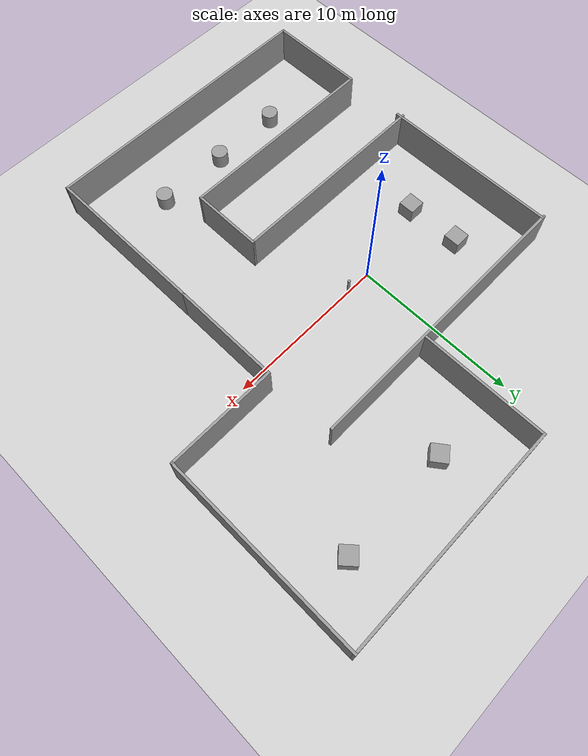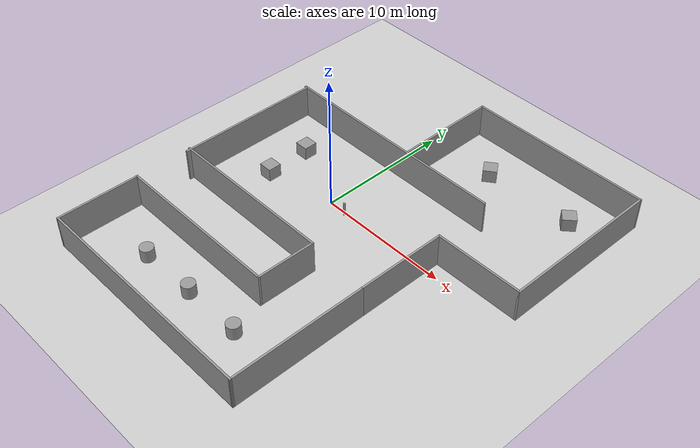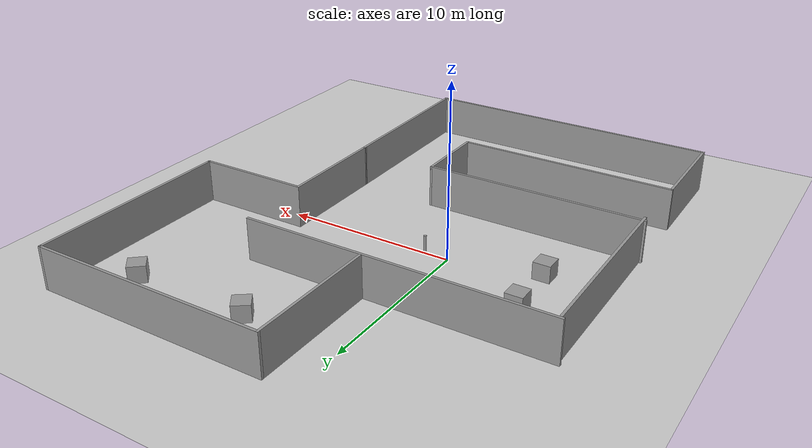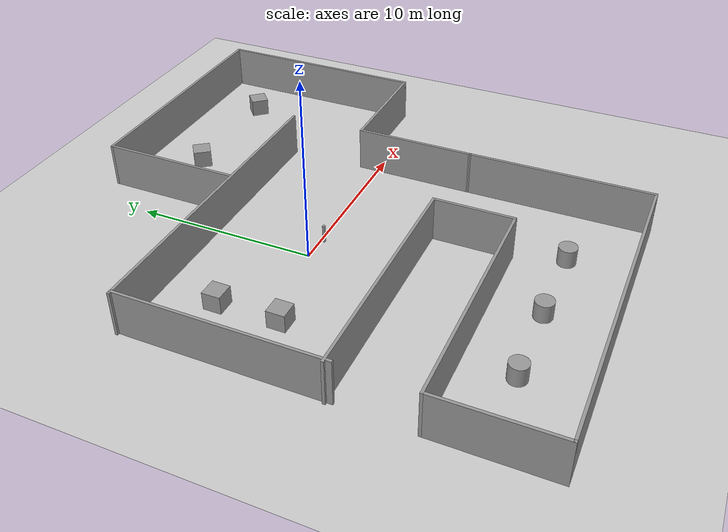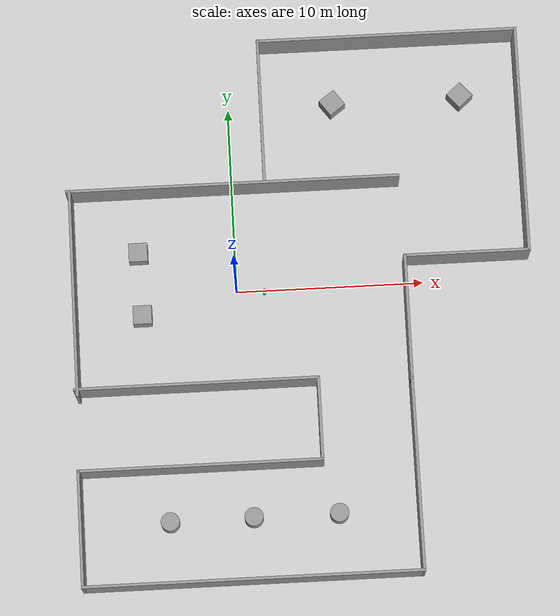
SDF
<sdf version="1.7">
 <world name="default">
  <light name="sun" type="directional">
   <pose>0 0 10 0 -0 0</pose>
   <diffuse>0.8 0.8 0.8 1</diffuse>
   <specular>0.2 0.2 0.2 1</specular>
   <attenuation>
    <range>1000</range>
    <constant>0.9</constant>
    <linear>0.01</linear>
    <quadratic>0.001</quadratic>
   </attenuation>
   <direction>-0.5 0.1 -0.9</direction>
   <spot><inner_angle>0</inner_angle><outer_angle>0</outer_angle><falloff>0</falloff></spot>
  </light>
  <model name="ground_plane">
   <static>1</static>
   <link name="link">
    <collision name="collision">
     <geometry><plane><normal>0 0 1</normal><size>100 100</size></plane></geometry>
     <surface><friction><ode><mu>100</mu><mu2>50</mu2></ode></friction></surface>
    </collision>
    <visual name="visual">
     <cast_shadows>0</cast_shadows>
     <geometry><plane><normal>0 0 1</normal><size>100 100</size></plane></geometry>
     <material>
      <script><uri>file://media/materials/scripts/gazebo.material</uri><name>Gazebo/Grey</name></script>
     </material>
    </visual>
   </link>
  </model>
  <gravity>0 0 -9.8</gravity>
  <magnetic_field>6e-06 2.3e-05 -4.2e-05</magnetic_field>
  <atmosphere type="adiabatic"/>
  <physics type="ode">
   <max_step_size>0.001</max_step_size>
   <real_time_factor>1</real_time_factor>
   <real_time_update_rate>1000</real_time_update_rate>
  </physics>
  <scene><ambient>0.4 0.4 0.4 1</ambient><background>0.7 0.7 0.7 1</background><shadows>1</shadows></scene>
  <audio><device>default</device></audio>
  <spherical_coordinates>
   <surface_model>EARTH_WGS84</surface_model>
   <latitude_deg>0</latitude_deg>
   <longitude_deg>0</longitude_deg>
   <elevation>0</elevation>
   <heading_deg>0</heading_deg>
  </spherical_coordinates>
  <model name="wall">
   <pose>3.42549 -1.24768 0 0 -0 0</pose>
   <link name="Wall_10">
    <collision name="Wall_10_Collision">
     <geometry><box><size>17.8087 0.15 2.5</size></box></geometry>
     <pose>0 0 1.25 0 -0 0</pose>
    </collision>
    <visual name="Wall_10_Visual">
     <pose>0 0 1.25 0 -0 0</pose>
     <geometry><box><size>17.8087 0.15 2.5</size></box></geometry>
     <material>
      <script><uri>file://media/materials/scripts/gazebo.material</uri><name>Gazebo/Grey</name></script>
      <ambient>1 1 1 1</ambient>
     </material>
     <meta><layer>0</layer></meta>
    </visual>
    <pose>-3.36274 6.69097 0 0 -0 0</pose>
   </link>
   <link name="Wall_13">
    <collision name="Wall_13_Collision">
     <geometry><box><size>11.1159 0.15 2.5</size></box></geometry>
     <pose>0 0 1.25 0 -0 0</pose>
    </collision>
    <visual name="Wall_13_Visual">
     <pose>0 0 1.25 0 -0 0</pose>
     <geometry><box><size>11.1159 0.15 2.5</size></box></geometry>
     <material>
      <script><uri>file://media/materials/scripts/gazebo.material</uri><name>Gazebo/Grey</name></script>
      <ambient>1 1 1 1</ambient>
     </material>
     <meta><layer>0</layer></meta>
    </visual>
    <pose>-12.0666 1.208 0 0 -0 1.5708</pose>
   </link>
   <link name="Wall_16">
    <collision name="Wall_16_Collision">
     <geometry><box><size>13 0.15 2.5</size></box></geometry>
     <pose>0 0 1.25 0 -0 0</pose>
    </collision>
    <visual name="Wall_16_Visual">
     <pose>0 0 1.25 0 -0 0</pose>
     <geometry><box><size>13 0.15 2.5</size></box></geometry>
     <material>
      <script><uri>file://media/materials/scripts/gazebo.material</uri><name>Gazebo/Grey</name></script>
      <ambient>1 1 1 1</ambient>
     </material>
     <meta><layer>0</layer></meta>
    </visual>
    <pose>-5.7671 -3.97456 0 0 -0 0</pose>
   </link>
   <link name="Wall_17">
    <collision name="Wall_17_Collision">
     <geometry><box><size>4.5 0.15 2.5</size></box></geometry>
     <pose>0 0 1.25 0 -0 0</pose>
    </collision>
    <visual name="Wall_17_Visual">
     <pose>0 0 1.25 0 -0 0</pose>
     <geometry><box><size>4.5 0.15 2.5</size></box></geometry>
     <material>
      <script><uri>file://media/materials/scripts/gazebo.material</uri><name>Gazebo/Grey</name></script>
      <ambient>1 1 1 1</ambient>
     </material>
     <meta><layer>0</layer></meta>
    </visual>
    <pose>0.657898 -6.14956 0 0 -0 -1.5708</pose>
   </link>
   <link name="Wall_18">
    <collision name="Wall_18_Collision">
     <geometry><box><size>13 0.15 2.5</size></box></geometry>
     <pose>0 0 1.25 0 -0 0</pose>
    </collision>
    <visual name="Wall_18_Visual">
     <pose>0 0 1.25 0 -0 0</pose>
     <geometry><box><size>13 0.15 2.5</size></box></geometry>
     <material>
      <script><uri>file://media/materials/scripts/gazebo.material</uri><name>Gazebo/Grey</name></script>
      <ambient>1 1 1 1</ambient>
     </material>
     <meta><layer>0</layer></meta>
    </visual>
    <pose>-5.7671 -8.32456 0 0 -0 3.14159</pose>
   </link>
   <link name="Wall_19">
    <collision name="Wall_19_Collision">
     <geometry><box><size>6.25 0.15 2.5</size></box></geometry>
     <pose>0 0 1.25 0 -0 0</pose>
    </collision>
    <visual name="Wall_19_Visual">
     <pose>0 0 1.25 0 -0 0</pose>
     <geometry><box><size>6.25 0.15 2.5</size></box></geometry>
     <material>
      <script><uri>file://media/materials/scripts/gazebo.material</uri><name>Gazebo/Grey</name></script>
      <ambient>1 1 1 1</ambient>
     </material>
     <meta><layer>0</layer></meta>
    </visual>
    <pose>-12.1921 -11.3746 0 0 -0 -1.5708</pose>
   </link>
   <link name="Wall_20">
    <collision name="Wall_20_Collision">
     <geometry><box><size>18 0.15 2.5</size></box></geometry>
     <pose>0 0 1.25 0 -0 0</pose>
    </collision>
    <visual name="Wall_20_Visual">
     <pose>0 0 1.25 0 -0 0</pose>
     <geometry><box><size>18 0.15 2.5</size></box></geometry>
     <material>
      <script><uri>file://media/materials/scripts/gazebo.material</uri><name>Gazebo/Grey</name></script>
      <ambient>1 1 1 1</ambient>
     </material>
     <meta><layer>0</layer></meta>
    </visual>
    <pose>-3.2671 -14.4246 0 0 -0 0</pose>
   </link>
   <link name="Wall_21">
    <collision name="Wall_21_Collision">
     <geometry><box><size>10.2998 0.15 2.5</size></box></geometry>
     <pose>0 0 1.25 0 -0 0</pose>
    </collision>
    <visual name="Wall_21_Visual">
     <pose>0 0 1.25 0 -0 0</pose>
     <geometry><box><size>10.2998 0.15 2.5</size></box></geometry>
     <material>
      <script><uri>file://media/materials/scripts/gazebo.material</uri><name>Gazebo/Grey</name></script>
      <ambient>1 1 1 1</ambient>
     </material>
     <meta><layer>0</layer></meta>
    </visual>
    <pose>5.625 -9.34977 0 0 -0 1.57728</pose>
   </link>
   <link name="Wall_23">
    <collision name="Wall_23_Collision">
     <geometry><box><size>6.75 0.15 2.5</size></box></geometry>
     <pose>0 0 1.25 0 -0 0</pose>
    </collision>
    <visual name="Wall_23_Visual">
     <pose>0 0 1.25 0 -0 0</pose>
     <geometry><box><size>6.75 0.15 2.5</size></box></geometry>
     <material>
      <script><uri>file://media/materials/scripts/gazebo.material</uri><name>Gazebo/Grey</name></script>
      <ambient>1 1 1 1</ambient>
     </material>
     <meta><layer>0</layer></meta>
    </visual>
    <pose>5.5921 -0.974974 0 0 -0 1.5708</pose>
   </link>
   <link name="Wall_24">
    <collision name="Wall_24_Collision">
     <geometry><box><size>6.75 0.15 2.5</size></box></geometry>
     <pose>0 0 1.25 0 -0 0</pose>
    </collision>
    <visual name="Wall_24_Visual">
     <pose>0 0 1.25 0 -0 0</pose>
     <geometry><box><size>6.75 0.15 2.5</size></box></geometry>
     <material>
      <script><uri>file://media/materials/scripts/gazebo.material</uri><name>Gazebo/Grey</name></script>
      <ambient>1 1 1 1</ambient>
     </material>
     <meta><layer>0</layer></meta>
    </visual>
    <pose>8.8921 2.32503 0 0 -0 0</pose>
   </link>
   <link name="Wall_25">
    <collision name="Wall_25_Collision">
     <geometry><box><size>12.25 0.15 2.5</size></box></geometry>
     <pose>0 0 1.25 0 -0 0</pose>
    </collision>
    <visual name="Wall_25_Visual">
     <pose>0 0 1.25 0 -0 0</pose>
     <geometry><box><size>12.25 0.15 2.5</size></box></geometry>
     <material>
      <script><uri>file://media/materials/scripts/gazebo.material</uri><name>Gazebo/Grey</name></script>
      <ambient>1 1 1 1</ambient>
     </material>
     <meta><layer>0</layer></meta>
    </visual>
    <pose>12.1921 8.37503 0 0 -0 1.5708</pose>
   </link>
   <link name="Wall_26">
    <collision name="Wall_26_Collision">
     <geometry><box><size>14 0.15 2.5</size></box></geometry>
     <pose>0 0 1.25 0 -0 0</pose>
    </collision>
    <visual name="Wall_26_Visual">
     <pose>0 0 1.25 0 -0 0</pose>
     <geometry><box><size>14 0.15 2.5</size></box></geometry>
     <material>
      <script><uri>file://media/materials/scripts/gazebo.material</uri><name>Gazebo/Grey</name></script>
      <ambient>1 1 1 1</ambient>
     </material>
     <meta><layer>0</layer></meta>
    </visual>
    <pose>5.2671 14.425 0 0 -0 3.14159</pose>
   </link>
   <link name="Wall_27">
    <collision name="Wall_27_Collision">
     <geometry><box><size>7.75 0.15 2.5</size></box></geometry>
     <pose>0 0 1.25 0 -0 0</pose>
    </collision>
    <visual name="Wall_27_Visual">
     <pose>0 0 1.25 0 -0 0</pose>
     <geometry><box><size>7.75 0.15 2.5</size></box></geometry>
     <material>
      <script><uri>file://media/materials/scripts/gazebo.material</uri><name>Gazebo/Grey</name></script>
      <ambient>1 1 1 1</ambient>
     </material>
     <meta><layer>0</layer></meta>
    </visual>
    <pose>-1.6579 10.625 0 0 -0 -1.5708</pose>
   </link>
   <static>1</static>
  </model>
  <model name="unit_box">
   <pose>-5.17772 2.26674 0.499995 1e-05 -0 0</pose>
   <link name="link">
    <inertial>
     <mass>1</mass>
     <inertia>
      <ixx>0.166667</ixx>
      <ixy>0</ixy>
      <ixz>0</ixz>
      <iyy>0.166667</iyy>
      <iyz>0</iyz>
      <izz>0.166667</izz>
     </inertia>
    </inertial>
    <collision name="collision"><geometry><box><size>1 1 1</size></box></geometry></collision>
    <visual name="visual">
     <geometry><box><size>1 1 1</size></box></geometry>
     <material>
      <script><name>Gazebo/Grey</name><uri>file://media/materials/scripts/gazebo.material</uri></script>
     </material>
    </visual>
   </link>
  </model>
  <model name="unit_cylinder">
   <pose>1.4853 -0.152135 0.5 0 -0 -1.2e-05</pose>
   <link name="link">
    <inertial>
     <mass>1</mass>
     <inertia><ixx>0.145833</ixx><ixy>0</ixy><ixz>0</ixz><iyy>0.145833</iyy><iyz>0</iyz><izz>0.125</izz></inertia>
    </inertial>
    <collision name="collision">
     <geometry><cylinder><radius>0.0860507</radius><length>1</length></cylinder></geometry>
    </collision>
    <visual name="visual">
     <geometry><cylinder><radius>0.0860507</radius><length>1</length></cylinder></geometry>
     <material>
      <script><name>Gazebo/Grey</name><uri>file://media/materials/scripts/gazebo.material</uri></script>
     </material>
    </visual>
   </link>
  </model>
  <model name="unit_box_0">
   <pose>12.5225 10.0308 0.5 0 -0 0.724114</pose>
   <link name="link">
    <inertial>
     <mass>1</mass>
     <inertia>
      <ixx>0.166667</ixx>
      <ixy>0</ixy>
      <ixz>0</ixz>
      <iyy>0.166667</iyy>
      <iyz>0</iyz>
      <izz>0.166667</izz>
     </inertia>
    </inertial>
    <collision name="collision"><geometry><box><size>1 1 1</size></box></geometry></collision>
    <visual name="visual">
     <geometry><box><size>1 1 1</size></box></geometry>
     <material>
      <script><name>Gazebo/Grey</name><uri>file://media/materials/scripts/gazebo.material</uri></script>
     </material>
    </visual>
   </link>
  </model>
  <model name="unit_cylinder_0">
   <pose>4.84718 -12.2584 0.499998 3e-06 4e-06 -0</pose>
   <link name="link">
    <inertial>
     <mass>1</mass>
     <inertia><ixx>0.145833</ixx><ixy>0</ixy><ixz>0</ixz><iyy>0.145833</iyy><iyz>0</iyz><izz>0.125</izz></inertia>
    </inertial>
    <collision name="collision">
     <geometry><cylinder><radius>0.5</radius><length>1</length></cylinder></geometry>
    </collision>
    <visual name="visual">
     <geometry><cylinder><radius>0.5</radius><length>1</length></cylinder></geometry>
     <material>
      <script><name>Gazebo/Grey</name><uri>file://media/materials/scripts/gazebo.material</uri></script>
     </material>
    </visual>
   </link>
  </model>
  <model name="unit_box_1">
   <pose>-5.09192 -1.1361 0.499995 1e-05 -0 0</pose>
   <link name="link">
    <inertial>
     <mass>1</mass>
     <inertia>
      <ixx>0.166667</ixx>
      <ixy>0</ixy>
      <ixz>0</ixz>
      <iyy>0.166667</iyy>
      <iyz>0</iyz>
      <izz>0.166667</izz>
     </inertia>
    </inertial>
    <collision name="collision"><geometry><box><size>1 1 1</size></box></geometry></collision>
    <visual name="visual">
     <geometry><box><size>1 1 1</size></box></geometry>
     <material>
      <script><name>Gazebo/Grey</name><uri>file://media/materials/scripts/gazebo.material</uri></script>
     </material>
    </visual>
   </link>
  </model>
  <model name="unit_cylinder_1">
   <pose>0.325299 -12.2544 0.499996 4e-06 4e-06 -0</pose>
   <link name="link">
    <inertial>
     <mass>1</mass>
     <inertia><ixx>0.145833</ixx><ixy>0</ixy><ixz>0</ixz><iyy>0.145833</iyy><iyz>0</iyz><izz>0.125</izz></inertia>
    </inertial>
    <collision name="collision">
     <geometry><cylinder><radius>0.5</radius><length>1</length></cylinder></geometry>
    </collision>
    <visual name="visual">
     <geometry><cylinder><radius>0.5</radius><length>1</length></cylinder></geometry>
     <material>
      <script><name>Gazebo/Grey</name><uri>file://media/materials/scripts/gazebo.material</uri></script>
     </material>
    </visual>
   </link>
  </model>
  <model name="unit_cylinder_2">
   <pose>-4.10173 -12.2999 0.499997 3e-06 -2e-06 0</pose>
   <link name="link">
    <inertial>
     <mass>1</mass>
     <inertia><ixx>0.145833</ixx><ixy>0</ixy><ixz>0</ixz><iyy>0.145833</iyy><iyz>0</iyz><izz>0.125</izz></inertia>
    </inertial>
    <collision name="collision">
     <geometry><cylinder><radius>0.5</radius><length>1</length></cylinder></geometry>
    </collision>
    <visual name="visual">
     <geometry><cylinder><radius>0.5</radius><length>1</length></cylinder></geometry>
     <material>
      <script><name>Gazebo/Grey</name><uri>file://media/materials/scripts/gazebo.material</uri></script>
     </material>
    </visual>
   </link>
  </model>
  <model name="unit_box_2">
   <pose>5.6192 9.9503 0.5 0 -0 0.637893</pose>
   <link name="link">
    <inertial>
     <mass>1</mass>
     <inertia>
      <ixx>0.166667</ixx>
      <ixy>0</ixy>
      <ixz>0</ixz>
      <iyy>0.166667</iyy>
      <iyz>0</iyz>
      <izz>0.166667</izz>
     </inertia>
    </inertial>
    <collision name="collision"><geometry><box><size>1 1 1</size></box></geometry></collision>
    <visual name="visual">
     <geometry><box><size>1 1 1</size></box></geometry>
     <material>
      <script><name>Gazebo/Grey</name><uri>file://media/materials/scripts/gazebo.material</uri></script>
     </material>
    </visual>
   </link>
  </model>
 </world>
</sdf>
